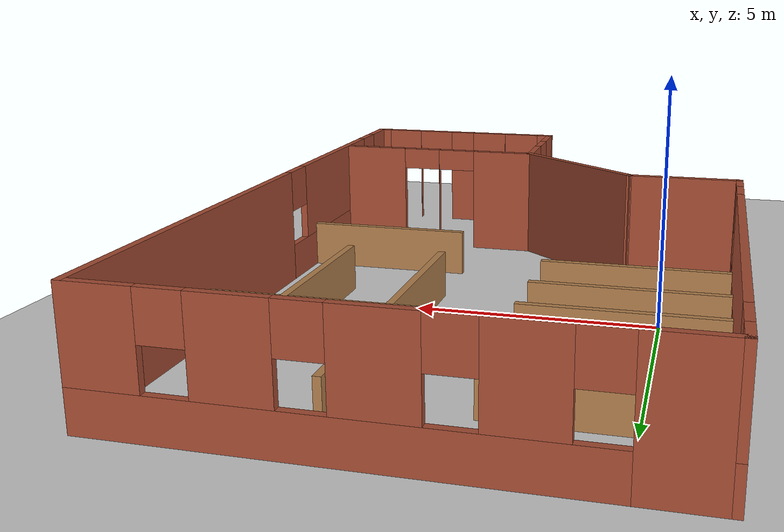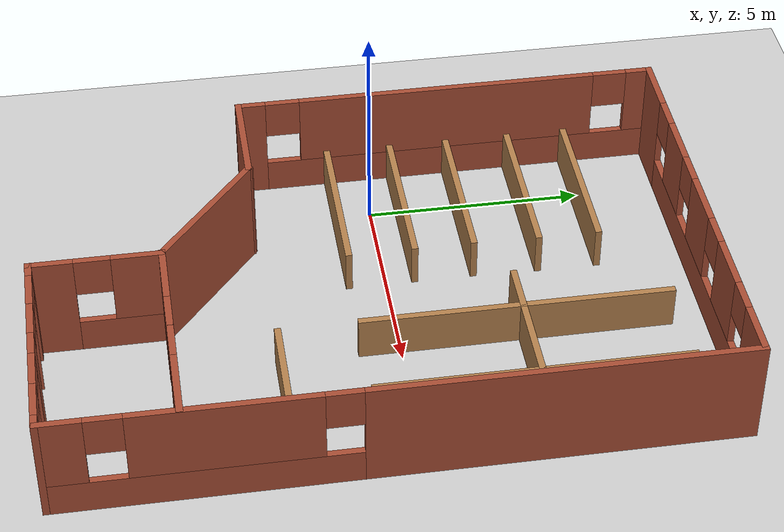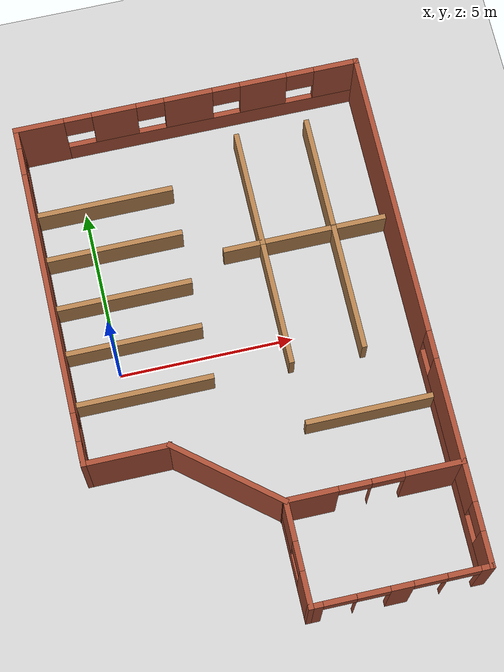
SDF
<sdf version="1.7">
 <world name="default">
  <light name="sun" type="directional">
   <pose>0 0 10 0 -0 0</pose>
   <diffuse>0.8 0.8 0.8 1</diffuse>
   <specular>0.2 0.2 0.2 1</specular>
   <attenuation>
    <range>1000</range>
    <constant>0.9</constant>
    <linear>0.01</linear>
    <quadratic>0.001</quadratic>
   </attenuation>
   <direction>-0.5 0.1 -0.9</direction>
   <spot><inner_angle>0</inner_angle><outer_angle>0</outer_angle><falloff>0</falloff></spot>
  </light>
  <model name="ground_plane">
   <static>1</static>
   <link name="link">
    <collision name="collision">
     <geometry><plane><normal>0 0 1</normal><size>100 100</size></plane></geometry>
     <surface><friction><ode><mu>100</mu><mu2>50</mu2></ode></friction></surface>
    </collision>
    <visual name="visual">
     <cast_shadows>0</cast_shadows>
     <geometry><plane><normal>0 0 1</normal><size>100 100</size></plane></geometry>
     <material>
      <script><uri>file://media/materials/scripts/gazebo.material</uri><name>Gazebo/Grey</name></script>
     </material>
    </visual>
   </link>
  </model>
  <gravity>0 0 -9.8</gravity>
  <magnetic_field>6e-06 2.3e-05 -4.2e-05</magnetic_field>
  <atmosphere type="adiabatic"/>
  <physics type="ode">
   <max_step_size>0.001</max_step_size>
   <real_time_factor>1</real_time_factor>
   <real_time_update_rate>1000</real_time_update_rate>
  </physics>
  <scene><ambient>0.4 0.4 0.4 1</ambient><background>0.7 0.7 0.7 1</background><shadows>1</shadows></scene>
  <audio><device>default</device></audio>
  <spherical_coordinates>
   <surface_model>EARTH_WGS84</surface_model>
   <latitude_deg>0</latitude_deg>
   <longitude_deg>0</longitude_deg>
   <elevation>0</elevation>
   <heading_deg>0</heading_deg>
  </spherical_coordinates>
  <model name="warehouse">
   <pose>3.49047 -0.467856 0 0 -0 0</pose>
   <link name="Wall_0">
    <pose>-4.925 2.5 0 0 -0 1.5708</pose>
    <visual name="Wall_0_Visual_0">
     <pose>-4.64847 0 1.25 0 -0 0</pose>
     <geometry><box><size>0.703062 0.15 2.5</size></box></geometry>
     <material>
      <script><uri>file://media/materials/scripts/gazebo.material</uri><name>Gazebo/Bricks</name></script>
      <ambient>1 1 1 1</ambient>
     </material>
     <meta><layer>0</layer></meta>
    </visual>
    <collision name="Wall_0_Collision_0">
     <geometry><box><size>0.703062 0.15 2.5</size></box></geometry>
     <pose>-4.64847 0 1.25 0 -0 0</pose>
    </collision>
    <visual name="Wall_0_Visual_1">
     <pose>0.351531 0 0.4 0 -0 0</pose>
     <geometry><box><size>9.29694 0.15 0.8</size></box></geometry>
     <material>
      <script><uri>file://media/materials/scripts/gazebo.material</uri><name>Gazebo/Bricks</name></script>
      <ambient>1 1 1 1</ambient>
     </material>
     <meta><layer>0</layer></meta>
    </visual>
    <collision name="Wall_0_Collision_1">
     <geometry><box><size>9.29694 0.15 0.8</size></box></geometry>
     <pose>0.351531 0 0.4 0 -0 0</pose>
    </collision>
    <visual name="Wall_0_Visual_2">
     <pose>0.026616 0 1.65 0 -0 0</pose>
     <geometry><box><size>7.04711 0.15 1.7</size></box></geometry>
     <material>
      <script><uri>file://media/materials/scripts/gazebo.material</uri><name>Gazebo/Bricks</name></script>
      <ambient>1 1 1 1</ambient>
     </material>
     <meta><layer>0</layer></meta>
    </visual>
    <collision name="Wall_0_Collision_2">
     <geometry><box><size>7.04711 0.15 1.7</size></box></geometry>
     <pose>0.026616 0 1.65 0 -0 0</pose>
    </collision>
    <visual name="Wall_0_Visual_3">
     <pose>4.67509 0 1.65 0 -0 0</pose>
     <geometry><box><size>0.649829 0.15 1.7</size></box></geometry>
     <material>
      <script><uri>file://media/materials/scripts/gazebo.material</uri><name>Gazebo/Bricks</name></script>
      <ambient>1 1 1 1</ambient>
     </material>
     <meta><layer>0</layer></meta>
    </visual>
    <collision name="Wall_0_Collision_3">
     <geometry><box><size>0.649829 0.15 1.7</size></box></geometry>
     <pose>4.67509 0 1.65 0 -0 0</pose>
    </collision>
    <visual name="Wall_0_Visual_4">
     <pose>-3.89694 0 2.05 0 -0 0</pose>
     <geometry><box><size>0.8 0.15 0.9</size></box></geometry>
     <material>
      <script><uri>file://media/materials/scripts/gazebo.material</uri><name>Gazebo/Bricks</name></script>
      <ambient>1 1 1 1</ambient>
     </material>
     <meta><layer>0</layer></meta>
    </visual>
    <collision name="Wall_0_Collision_4">
     <geometry><box><size>0.8 0.15 0.9</size></box></geometry>
     <pose>-3.89694 0 2.05 0 -0 0</pose>
    </collision>
    <visual name="Wall_0_Visual_5">
     <pose>3.95017 0 2.05 0 -0 0</pose>
     <geometry><box><size>0.8 0.15 0.9</size></box></geometry>
     <material>
      <script><uri>file://media/materials/scripts/gazebo.material</uri><name>Gazebo/Bricks</name></script>
      <ambient>1 1 1 1</ambient>
     </material>
     <meta><layer>0</layer></meta>
    </visual>
    <collision name="Wall_0_Collision_5">
     <geometry><box><size>0.8 0.15 0.9</size></box></geometry>
     <pose>3.95017 0 2.05 0 -0 0</pose>
    </collision>
   </link>
   <link name="Wall_11">
    <pose>0.075 -6 0 0 -0 1.5708</pose>
    <visual name="Wall_11_Visual_0">
     <pose>-0.9855 0 1.25 0 -0 0</pose>
     <geometry><box><size>1.029 0.15 2.5</size></box></geometry>
     <material>
      <script><uri>file://media/materials/scripts/gazebo.material</uri><name>Gazebo/Bricks</name></script>
      <ambient>1 1 1 1</ambient>
     </material>
     <meta><layer>0</layer></meta>
    </visual>
    <collision name="Wall_11_Collision_0">
     <geometry><box><size>1.029 0.15 2.5</size></box></geometry>
     <pose>-0.9855 0 1.25 0 -0 0</pose>
    </collision>
    <visual name="Wall_11_Visual_1">
     <pose>0.5145 0 0.4 0 -0 0</pose>
     <geometry><box><size>1.971 0.15 0.8</size></box></geometry>
     <material>
      <script><uri>file://media/materials/scripts/gazebo.material</uri><name>Gazebo/Bricks</name></script>
      <ambient>1 1 1 1</ambient>
     </material>
     <meta><layer>0</layer></meta>
    </visual>
    <collision name="Wall_11_Collision_1">
     <geometry><box><size>1.971 0.15 0.8</size></box></geometry>
     <pose>0.5145 0 0.4 0 -0 0</pose>
    </collision>
    <visual name="Wall_11_Visual_2">
     <pose>0.9145 0 1.65 0 -0 0</pose>
     <geometry><box><size>1.171 0.15 1.7</size></box></geometry>
     <material>
      <script><uri>file://media/materials/scripts/gazebo.material</uri><name>Gazebo/Bricks</name></script>
      <ambient>1 1 1 1</ambient>
     </material>
     <meta><layer>0</layer></meta>
    </visual>
    <collision name="Wall_11_Collision_2">
     <geometry><box><size>1.171 0.15 1.7</size></box></geometry>
     <pose>0.9145 0 1.65 0 -0 0</pose>
    </collision>
    <visual name="Wall_11_Visual_3">
     <pose>-0.071 0 2.05 0 -0 0</pose>
     <geometry><box><size>0.8 0.15 0.9</size></box></geometry>
     <material>
      <script><uri>file://media/materials/scripts/gazebo.material</uri><name>Gazebo/Bricks</name></script>
      <ambient>1 1 1 1</ambient>
     </material>
     <meta><layer>0</layer></meta>
    </visual>
    <collision name="Wall_11_Collision_3">
     <geometry><box><size>0.8 0.15 0.9</size></box></geometry>
     <pose>-0.071 0 2.05 0 -0 0</pose>
    </collision>
   </link>
   <link name="Wall_12">
    <collision name="Wall_12_Collision">
     <geometry><box><size>3.56248 0.15 2.5</size></box></geometry>
     <pose>0 0 1.25 0 -0 0</pose>
    </collision>
    <visual name="Wall_12_Visual">
     <pose>0 0 1.25 0 -0 0</pose>
     <geometry><box><size>3.56248 0.15 2.5</size></box></geometry>
     <material>
      <script><uri>file://media/materials/scripts/gazebo.material</uri><name>Gazebo/Bricks</name></script>
      <ambient>1 1 1 1</ambient>
     </material>
     <meta><layer>0</layer></meta>
    </visual>
    <pose>-1.25 -3.5 0 0 -0 2.45999</pose>
   </link>
   <link name="Wall_14">
    <collision name="Wall_14_Collision">
     <geometry><box><size>4 0.15 1</size></box></geometry>
     <pose>0 0 0.5 0 -0 0</pose>
    </collision>
    <visual name="Wall_14_Visual">
     <pose>0 0 0.5 0 -0 0</pose>
     <geometry><box><size>4 0.15 1</size></box></geometry>
     <material>
      <script><uri>file://media/materials/scripts/gazebo.material</uri><name>Gazebo/Wood</name></script>
      <ambient>1 1 1 1</ambient>
     </material>
     <meta><layer>0</layer></meta>
    </visual>
    <pose>-2.908 5.377 0 0 -0 0</pose>
   </link>
   <link name="Wall_16">
    <collision name="Wall_16_Collision">
     <geometry><box><size>4 0.15 1</size></box></geometry>
     <pose>0 0 0.5 0 -0 0</pose>
    </collision>
    <visual name="Wall_16_Visual">
     <pose>0 0 0.5 0 -0 0</pose>
     <geometry><box><size>4 0.15 1</size></box></geometry>
     <material>
      <script><uri>file://media/materials/scripts/gazebo.material</uri><name>Gazebo/Wood</name></script>
      <ambient>1 1 1 1</ambient>
     </material>
     <meta><layer>0</layer></meta>
    </visual>
    <pose>-2.916 3.991 0 0 -0 0</pose>
   </link>
   <link name="Wall_18">
    <collision name="Wall_18_Collision">
     <geometry><box><size>4 0.15 1</size></box></geometry>
     <pose>0 0 0.5 0 -0 0</pose>
    </collision>
    <visual name="Wall_18_Visual">
     <pose>0 0 0.5 0 -0 0</pose>
     <geometry><box><size>4 0.15 1</size></box></geometry>
     <material>
      <script><uri>file://media/materials/scripts/gazebo.material</uri><name>Gazebo/Wood</name></script>
      <ambient>1 1 1 1</ambient>
     </material>
     <meta><layer>0</layer></meta>
    </visual>
    <pose>-2.962 2.494 0 0 -0 0</pose>
   </link>
   <link name="Wall_2">
    <pose>-0 7.425 0 0 -0 0</pose>
    <visual name="Wall_2_Visual_0">
     <pose>-4.2747 0 1.25 0 -0 0</pose>
     <geometry><box><size>1.45059 0.15 2.5</size></box></geometry>
     <material>
      <script><uri>file://media/materials/scripts/gazebo.material</uri><name>Gazebo/Bricks</name></script>
      <ambient>1 1 1 1</ambient>
     </material>
     <meta><layer>0</layer></meta>
    </visual>
    <collision name="Wall_2_Collision_0">
     <geometry><box><size>1.45059 0.15 2.5</size></box></geometry>
     <pose>-4.2747 0 1.25 0 -0 0</pose>
    </collision>
    <visual name="Wall_2_Visual_1">
     <pose>0.725296 0 0.4 0 -0 0</pose>
     <geometry><box><size>8.54941 0.15 0.8</size></box></geometry>
     <material>
      <script><uri>file://media/materials/scripts/gazebo.material</uri><name>Gazebo/Bricks</name></script>
      <ambient>1 1 1 1</ambient>
     </material>
     <meta><layer>0</layer></meta>
    </visual>
    <collision name="Wall_2_Collision_1">
     <geometry><box><size>8.54941 0.15 0.8</size></box></geometry>
     <pose>0.725296 0 0.4 0 -0 0</pose>
    </collision>
    <visual name="Wall_2_Visual_2">
     <pose>-2.10871 0 1.65 0 -0 0</pose>
     <geometry><box><size>1.2814 0.15 1.7</size></box></geometry>
     <material>
      <script><uri>file://media/materials/scripts/gazebo.material</uri><name>Gazebo/Bricks</name></script>
      <ambient>1 1 1 1</ambient>
     </material>
     <meta><layer>0</layer></meta>
    </visual>
    <collision name="Wall_2_Collision_2">
     <geometry><box><size>1.2814 0.15 1.7</size></box></geometry>
     <pose>-2.10871 0 1.65 0 -0 0</pose>
    </collision>
    <visual name="Wall_2_Visual_3">
     <pose>0.0325 0 1.65 0 -0 0</pose>
     <geometry><box><size>1.40102 0.15 1.7</size></box></geometry>
     <material>
      <script><uri>file://media/materials/scripts/gazebo.material</uri><name>Gazebo/Bricks</name></script>
      <ambient>1 1 1 1</ambient>
     </material>
     <meta><layer>0</layer></meta>
    </visual>
    <collision name="Wall_2_Collision_3">
     <geometry><box><size>1.40102 0.15 1.7</size></box></geometry>
     <pose>0.0325 0 1.65 0 -0 0</pose>
    </collision>
    <visual name="Wall_2_Visual_4">
     <pose>2.20959 0 1.65 0 -0 0</pose>
     <geometry><box><size>1.35317 0.15 1.7</size></box></geometry>
     <material>
      <script><uri>file://media/materials/scripts/gazebo.material</uri><name>Gazebo/Bricks</name></script>
      <ambient>1 1 1 1</ambient>
     </material>
     <meta><layer>0</layer></meta>
    </visual>
    <collision name="Wall_2_Collision_4">
     <geometry><box><size>1.35317 0.15 1.7</size></box></geometry>
     <pose>2.20959 0 1.65 0 -0 0</pose>
    </collision>
    <visual name="Wall_2_Visual_5">
     <pose>4.34309 0 1.65 0 -0 0</pose>
     <geometry><box><size>1.31382 0.15 1.7</size></box></geometry>
     <material>
      <script><uri>file://media/materials/scripts/gazebo.material</uri><name>Gazebo/Bricks</name></script>
      <ambient>1 1 1 1</ambient>
     </material>
     <meta><layer>0</layer></meta>
    </visual>
    <collision name="Wall_2_Collision_5">
     <geometry><box><size>1.31382 0.15 1.7</size></box></geometry>
     <pose>4.34309 0 1.65 0 -0 0</pose>
    </collision>
    <visual name="Wall_2_Visual_6">
     <pose>-3.14941 0 2.05 0 -0 0</pose>
     <geometry><box><size>0.8 0.15 0.9</size></box></geometry>
     <material>
      <script><uri>file://media/materials/scripts/gazebo.material</uri><name>Gazebo/Bricks</name></script>
      <ambient>1 1 1 1</ambient>
     </material>
     <meta><layer>0</layer></meta>
    </visual>
    <collision name="Wall_2_Collision_6">
     <geometry><box><size>0.8 0.15 0.9</size></box></geometry>
     <pose>-3.14941 0 2.05 0 -0 0</pose>
    </collision>
    <visual name="Wall_2_Visual_7">
     <pose>-1.06801 0 2.05 0 -0 0</pose>
     <geometry><box><size>0.8 0.15 0.9</size></box></geometry>
     <material>
      <script><uri>file://media/materials/scripts/gazebo.material</uri><name>Gazebo/Bricks</name></script>
      <ambient>1 1 1 1</ambient>
     </material>
     <meta><layer>0</layer></meta>
    </visual>
    <collision name="Wall_2_Collision_7">
     <geometry><box><size>0.8 0.15 0.9</size></box></geometry>
     <pose>-1.06801 0 2.05 0 -0 0</pose>
    </collision>
    <visual name="Wall_2_Visual_8">
     <pose>1.13301 0 2.05 0 -0 0</pose>
     <geometry><box><size>0.8 0.15 0.9</size></box></geometry>
     <material>
      <script><uri>file://media/materials/scripts/gazebo.material</uri><name>Gazebo/Bricks</name></script>
      <ambient>1 1 1 1</ambient>
     </material>
     <meta><layer>0</layer></meta>
    </visual>
    <collision name="Wall_2_Collision_8">
     <geometry><box><size>0.8 0.15 0.9</size></box></geometry>
     <pose>1.13301 0 2.05 0 -0 0</pose>
    </collision>
    <visual name="Wall_2_Visual_9">
     <pose>3.28618 0 2.05 0 -0 0</pose>
     <geometry><box><size>0.8 0.15 0.9</size></box></geometry>
     <material>
      <script><uri>file://media/materials/scripts/gazebo.material</uri><name>Gazebo/Bricks</name></script>
      <ambient>1 1 1 1</ambient>
     </material>
     <meta><layer>0</layer></meta>
    </visual>
    <collision name="Wall_2_Collision_9">
     <geometry><box><size>0.8 0.15 0.9</size></box></geometry>
     <pose>3.28618 0 2.05 0 -0 0</pose>
    </collision>
   </link>
   <link name="Wall_20">
    <collision name="Wall_20_Collision">
     <geometry><box><size>4 0.15 1</size></box></geometry>
     <pose>0 0 0.5 0 -0 0</pose>
    </collision>
    <visual name="Wall_20_Visual">
     <pose>0 0 0.5 0 -0 0</pose>
     <geometry><box><size>4 0.15 1</size></box></geometry>
     <material>
      <script><uri>file://media/materials/scripts/gazebo.material</uri><name>Gazebo/Wood</name></script>
      <ambient>1 1 1 1</ambient>
     </material>
     <meta><layer>0</layer></meta>
    </visual>
    <pose>-2.961 1.133 0 0 -0 0</pose>
   </link>
   <link name="Wall_22">
    <collision name="Wall_22_Collision">
     <geometry><box><size>4 0.15 1</size></box></geometry>
     <pose>0 0 0.5 0 -0 0</pose>
    </collision>
    <visual name="Wall_22_Visual">
     <pose>0 0 0.5 0 -0 0</pose>
     <geometry><box><size>4 0.15 1</size></box></geometry>
     <material>
      <script><uri>file://media/materials/scripts/gazebo.material</uri><name>Gazebo/Wood</name></script>
      <ambient>1 1 1 1</ambient>
     </material>
     <meta><layer>0</layer></meta>
    </visual>
    <pose>-2.954 -0.379 0 0 -0 0</pose>
   </link>
   <link name="Wall_24">
    <collision name="Wall_24_Collision">
     <geometry><box><size>4.75 0.15 1</size></box></geometry>
     <pose>0 0 0.5 0 -0 0</pose>
    </collision>
    <visual name="Wall_24_Visual">
     <pose>0 0 0.5 0 -0 0</pose>
     <geometry><box><size>4.75 0.15 1</size></box></geometry>
     <material>
      <script><uri>file://media/materials/scripts/gazebo.material</uri><name>Gazebo/Wood</name></script>
      <ambient>1 1 1 1</ambient>
     </material>
     <meta><layer>0</layer></meta>
    </visual>
    <pose>2.474 3.186 0 0 -0 0</pose>
   </link>
   <link name="Wall_28">
    <collision name="Wall_28_Collision">
     <geometry><box><size>3.5 0.15 1</size></box></geometry>
     <pose>0 0 0.5 0 -0 0</pose>
    </collision>
    <visual name="Wall_28_Visual">
     <pose>0 0 0.5 0 -0 0</pose>
     <geometry><box><size>3.5 0.15 1</size></box></geometry>
     <material>
      <script><uri>file://media/materials/scripts/gazebo.material</uri><name>Gazebo/Wood</name></script>
      <ambient>1 1 1 1</ambient>
     </material>
     <meta><layer>0</layer></meta>
    </visual>
    <pose>1.244 4.865 0 0 -0 -1.5708</pose>
   </link>
   <link name="Wall_30">
    <collision name="Wall_30_Collision">
     <geometry><box><size>3.75 0.15 1</size></box></geometry>
     <pose>0 0 0.5 0 -0 0</pose>
    </collision>
    <visual name="Wall_30_Visual">
     <pose>0 0 0.5 0 -0 0</pose>
     <geometry><box><size>3.75 0.15 1</size></box></geometry>
     <material>
      <script><uri>file://media/materials/scripts/gazebo.material</uri><name>Gazebo/Wood</name></script>
      <ambient>1 1 1 1</ambient>
     </material>
     <meta><layer>0</layer></meta>
    </visual>
    <pose>3.329 1.384 0 0 -0 -1.5708</pose>
   </link>
   <link name="Wall_32">
    <collision name="Wall_32_Collision">
     <geometry><box><size>3.75 0.15 1</size></box></geometry>
     <pose>0 0 0.5 0 -0 0</pose>
    </collision>
    <visual name="Wall_32_Visual">
     <pose>0 0 0.5 0 -0 0</pose>
     <geometry><box><size>3.75 0.15 1</size></box></geometry>
     <material>
      <script><uri>file://media/materials/scripts/gazebo.material</uri><name>Gazebo/Wood</name></script>
      <ambient>1 1 1 1</ambient>
     </material>
     <meta><layer>0</layer></meta>
    </visual>
    <pose>1.244 1.39 0 0 -0 -1.5708</pose>
   </link>
   <link name="Wall_34">
    <collision name="Wall_34_Collision">
     <geometry><box><size>3.5 0.15 1</size></box></geometry>
     <pose>0 0 0.5 0 -0 0</pose>
    </collision>
    <visual name="Wall_34_Visual">
     <pose>0 0 0.5 0 -0 0</pose>
     <geometry><box><size>3.5 0.15 1</size></box></geometry>
     <material>
      <script><uri>file://media/materials/scripts/gazebo.material</uri><name>Gazebo/Wood</name></script>
      <ambient>1 1 1 1</ambient>
     </material>
     <meta><layer>0</layer></meta>
    </visual>
    <pose>3.329 4.859 0 0 -0 1.5708</pose>
   </link>
   <link name="Wall_36">
    <pose>2.48377 -4.56311 0 0 -0 3.14159</pose>
    <visual name="Wall_36_Visual_0">
     <pose>-1.66401 0 1.25 0 -0 0</pose>
     <geometry><box><size>1.67197 0.15 2.5</size></box></geometry>
     <material>
      <script><uri>file://media/materials/scripts/gazebo.material</uri><name>Gazebo/Bricks</name></script>
      <ambient>1 1 1 1</ambient>
     </material>
     <meta><layer>0</layer></meta>
    </visual>
    <collision name="Wall_36_Collision_0">
     <geometry><box><size>1.67197 0.15 2.5</size></box></geometry>
     <pose>-1.66401 0 1.25 0 -0 0</pose>
    </collision>
    <visual name="Wall_36_Visual_1">
     <pose>0.073541 0 1.25 0 -0 0</pose>
     <geometry><box><size>0.003138 0.15 2.5</size></box></geometry>
     <material>
      <script><uri>file://media/materials/scripts/gazebo.material</uri><name>Gazebo/Bricks</name></script>
      <ambient>1 1 1 1</ambient>
     </material>
     <meta><layer>0</layer></meta>
    </visual>
    <collision name="Wall_36_Collision_1">
     <geometry><box><size>0.003138 0.15 2.5</size></box></geometry>
     <pose>0.073541 0 1.25 0 -0 0</pose>
    </collision>
    <visual name="Wall_36_Visual_2">
     <pose>1.73755 0 1.25 0 -0 0</pose>
     <geometry><box><size>1.52489 0.15 2.5</size></box></geometry>
     <material>
      <script><uri>file://media/materials/scripts/gazebo.material</uri><name>Gazebo/Bricks</name></script>
      <ambient>1 1 1 1</ambient>
     </material>
     <meta><layer>0</layer></meta>
    </visual>
    <collision name="Wall_36_Collision_2">
     <geometry><box><size>1.52489 0.15 2.5</size></box></geometry>
     <pose>1.73755 0 1.25 0 -0 0</pose>
    </collision>
    <visual name="Wall_36_Visual_3">
     <pose>-0.378028 0 2.25 0 -0 0</pose>
     <geometry><box><size>0.9 0.15 0.5</size></box></geometry>
     <material>
      <script><uri>file://media/materials/scripts/gazebo.material</uri><name>Gazebo/Bricks</name></script>
      <ambient>1 1 1 1</ambient>
     </material>
     <meta><layer>0</layer></meta>
    </visual>
    <collision name="Wall_36_Collision_3">
     <geometry><box><size>0.9 0.15 0.5</size></box></geometry>
     <pose>-0.378028 0 2.25 0 -0 0</pose>
    </collision>
    <visual name="Wall_36_Visual_4">
     <pose>0.52511 0 2.25 0 -0 0</pose>
     <geometry><box><size>0.9 0.15 0.5</size></box></geometry>
     <material>
      <script><uri>file://media/materials/scripts/gazebo.material</uri><name>Gazebo/Bricks</name></script>
      <ambient>1 1 1 1</ambient>
     </material>
     <meta><layer>0</layer></meta>
    </visual>
    <collision name="Wall_36_Collision_4">
     <geometry><box><size>0.9 0.15 0.5</size></box></geometry>
     <pose>0.52511 0 2.25 0 -0 0</pose>
    </collision>
   </link>
   <link name="Wall_39">
    <collision name="Wall_39_Collision">
     <geometry><box><size>3.75 0.15 1</size></box></geometry>
     <pose>0 0 0.5 0 -0 0</pose>
    </collision>
    <visual name="Wall_39_Visual">
     <pose>0 0 0.5 0 -0 0</pose>
     <geometry><box><size>3.75 0.15 1</size></box></geometry>
     <material>
      <script><uri>file://media/materials/scripts/gazebo.material</uri><name>Gazebo/Wood</name></script>
      <ambient>1 1 1 1</ambient>
     </material>
     <meta><layer>0</layer></meta>
    </visual>
    <pose>3.089 -2.246 0 0 -0 3.14159</pose>
   </link>
   <link name="Wall_4">
    <pose>4.925 -0 0 0 -0 -1.5708</pose>
    <visual name="Wall_4_Visual_0">
     <pose>-3.3233 0 1.25 0 -0 0</pose>
     <geometry><box><size>8.35339 0.15 2.5</size></box></geometry>
     <material>
      <script><uri>file://media/materials/scripts/gazebo.material</uri><name>Gazebo/Bricks</name></script>
      <ambient>1 1 1 1</ambient>
     </material>
     <meta><layer>0</layer></meta>
    </visual>
    <collision name="Wall_4_Collision_0">
     <geometry><box><size>8.35339 0.15 2.5</size></box></geometry>
     <pose>-3.3233 0 1.25 0 -0 0</pose>
    </collision>
    <visual name="Wall_4_Visual_1">
     <pose>4.1767 0 0.4 0 -0 0</pose>
     <geometry><box><size>6.64661 0.15 0.8</size></box></geometry>
     <material>
      <script><uri>file://media/materials/scripts/gazebo.material</uri><name>Gazebo/Bricks</name></script>
      <ambient>1 1 1 1</ambient>
     </material>
     <meta><layer>0</layer></meta>
    </visual>
    <collision name="Wall_4_Collision_1">
     <geometry><box><size>6.64661 0.15 0.8</size></box></geometry>
     <pose>4.1767 0 0.4 0 -0 0</pose>
    </collision>
    <visual name="Wall_4_Visual_2">
     <pose>3.66982 0 1.65 0 -0 0</pose>
     <geometry><box><size>4.03286 0.15 1.7</size></box></geometry>
     <material>
      <script><uri>file://media/materials/scripts/gazebo.material</uri><name>Gazebo/Bricks</name></script>
      <ambient>1 1 1 1</ambient>
     </material>
     <meta><layer>0</layer></meta>
    </visual>
    <collision name="Wall_4_Collision_2">
     <geometry><box><size>4.03286 0.15 1.7</size></box></geometry>
     <pose>3.66982 0 1.65 0 -0 0</pose>
    </collision>
    <visual name="Wall_4_Visual_3">
     <pose>6.99313 0 1.65 0 -0 0</pose>
     <geometry><box><size>1.01375 0.15 1.7</size></box></geometry>
     <material>
      <script><uri>file://media/materials/scripts/gazebo.material</uri><name>Gazebo/Bricks</name></script>
      <ambient>1 1 1 1</ambient>
     </material>
     <meta><layer>0</layer></meta>
    </visual>
    <collision name="Wall_4_Collision_3">
     <geometry><box><size>1.01375 0.15 1.7</size></box></geometry>
     <pose>6.99313 0 1.65 0 -0 0</pose>
    </collision>
    <visual name="Wall_4_Visual_4">
     <pose>1.25339 0 2.05 0 -0 0</pose>
     <geometry><box><size>0.8 0.15 0.9</size></box></geometry>
     <material>
      <script><uri>file://media/materials/scripts/gazebo.material</uri><name>Gazebo/Bricks</name></script>
      <ambient>1 1 1 1</ambient>
     </material>
     <meta><layer>0</layer></meta>
    </visual>
    <collision name="Wall_4_Collision_4">
     <geometry><box><size>0.8 0.15 0.9</size></box></geometry>
     <pose>1.25339 0 2.05 0 -0 0</pose>
    </collision>
    <visual name="Wall_4_Visual_5">
     <pose>6.08625 0 2.05 0 -0 0</pose>
     <geometry><box><size>0.8 0.15 0.9</size></box></geometry>
     <material>
      <script><uri>file://media/materials/scripts/gazebo.material</uri><name>Gazebo/Bricks</name></script>
      <ambient>1 1 1 1</ambient>
     </material>
     <meta><layer>0</layer></meta>
    </visual>
    <collision name="Wall_4_Collision_5">
     <geometry><box><size>0.8 0.15 0.9</size></box></geometry>
     <pose>6.08625 0 2.05 0 -0 0</pose>
    </collision>
   </link>
   <link name="Wall_6">
    <pose>2.5 -7.425 0 0 -0 3.14159</pose>
    <visual name="Wall_6_Visual_0">
     <pose>-2.31601 0 1.25 0 -0 0</pose>
     <geometry><box><size>0.367981 0.15 2.5</size></box></geometry>
     <material>
      <script><uri>file://media/materials/scripts/gazebo.material</uri><name>Gazebo/Bricks</name></script>
      <ambient>1 1 1 1</ambient>
     </material>
     <meta><layer>0</layer></meta>
    </visual>
    <collision name="Wall_6_Collision_0">
     <geometry><box><size>0.367981 0.15 2.5</size></box></geometry>
     <pose>-2.31601 0 1.25 0 -0 0</pose>
    </collision>
    <visual name="Wall_6_Visual_1">
     <pose>-1.2309 0 1.25 0 -0 0</pose>
     <geometry><box><size>0.002249 0.15 2.5</size></box></geometry>
     <material>
      <script><uri>file://media/materials/scripts/gazebo.material</uri><name>Gazebo/Bricks</name></script>
      <ambient>1 1 1 1</ambient>
     </material>
     <meta><layer>0</layer></meta>
    </visual>
    <collision name="Wall_6_Collision_1">
     <geometry><box><size>0.002249 0.15 2.5</size></box></geometry>
     <pose>-1.2309 0 1.25 0 -0 0</pose>
    </collision>
    <visual name="Wall_6_Visual_2">
     <pose>-0.01737 0 1.25 0 -0 0</pose>
     <geometry><box><size>0.6248 0.15 2.5</size></box></geometry>
     <material>
      <script><uri>file://media/materials/scripts/gazebo.material</uri><name>Gazebo/Bricks</name></script>
      <ambient>1 1 1 1</ambient>
     </material>
     <meta><layer>0</layer></meta>
    </visual>
    <collision name="Wall_6_Collision_2">
     <geometry><box><size>0.6248 0.15 2.5</size></box></geometry>
     <pose>-0.01737 0 1.25 0 -0 0</pose>
    </collision>
    <visual name="Wall_6_Visual_3">
     <pose>1.19616 0 1.25 0 -0 0</pose>
     <geometry><box><size>0.002249 0.15 2.5</size></box></geometry>
     <material>
      <script><uri>file://media/materials/scripts/gazebo.material</uri><name>Gazebo/Bricks</name></script>
      <ambient>1 1 1 1</ambient>
     </material>
     <meta><layer>0</layer></meta>
    </visual>
    <collision name="Wall_6_Collision_3">
     <geometry><box><size>0.002249 0.15 2.5</size></box></geometry>
     <pose>1.19616 0 1.25 0 -0 0</pose>
    </collision>
    <visual name="Wall_6_Visual_4">
     <pose>2.29864 0 1.25 0 -0 0</pose>
     <geometry><box><size>0.402721 0.15 2.5</size></box></geometry>
     <material>
      <script><uri>file://media/materials/scripts/gazebo.material</uri><name>Gazebo/Bricks</name></script>
      <ambient>1 1 1 1</ambient>
     </material>
     <meta><layer>0</layer></meta>
    </visual>
    <collision name="Wall_6_Collision_4">
     <geometry><box><size>0.402721 0.15 2.5</size></box></geometry>
     <pose>2.29864 0 1.25 0 -0 0</pose>
    </collision>
    <visual name="Wall_6_Visual_5">
     <pose>-1.68202 0 2.25 0 -0 0</pose>
     <geometry><box><size>0.9 0.15 0.5</size></box></geometry>
     <material>
      <script><uri>file://media/materials/scripts/gazebo.material</uri><name>Gazebo/Bricks</name></script>
      <ambient>1 1 1 1</ambient>
     </material>
     <meta><layer>0</layer></meta>
    </visual>
    <collision name="Wall_6_Collision_5">
     <geometry><box><size>0.9 0.15 0.5</size></box></geometry>
     <pose>-1.68202 0 2.25 0 -0 0</pose>
    </collision>
    <visual name="Wall_6_Visual_6">
     <pose>-0.77977 0 2.25 0 -0 0</pose>
     <geometry><box><size>0.9 0.15 0.5</size></box></geometry>
     <material>
      <script><uri>file://media/materials/scripts/gazebo.material</uri><name>Gazebo/Bricks</name></script>
      <ambient>1 1 1 1</ambient>
     </material>
     <meta><layer>0</layer></meta>
    </visual>
    <collision name="Wall_6_Collision_6">
     <geometry><box><size>0.9 0.15 0.5</size></box></geometry>
     <pose>-0.77977 0 2.25 0 -0 0</pose>
    </collision>
    <visual name="Wall_6_Visual_7">
     <pose>0.74503 0 2.25 0 -0 0</pose>
     <geometry><box><size>0.9 0.15 0.5</size></box></geometry>
     <material>
      <script><uri>file://media/materials/scripts/gazebo.material</uri><name>Gazebo/Bricks</name></script>
      <ambient>1 1 1 1</ambient>
     </material>
     <meta><layer>0</layer></meta>
    </visual>
    <collision name="Wall_6_Collision_7">
     <geometry><box><size>0.9 0.15 0.5</size></box></geometry>
     <pose>0.74503 0 2.25 0 -0 0</pose>
    </collision>
    <visual name="Wall_6_Visual_8">
     <pose>1.64728 0 2.25 0 -0 0</pose>
     <geometry><box><size>0.9 0.15 0.5</size></box></geometry>
     <material>
      <script><uri>file://media/materials/scripts/gazebo.material</uri><name>Gazebo/Bricks</name></script>
      <ambient>1 1 1 1</ambient>
     </material>
     <meta><layer>0</layer></meta>
    </visual>
    <collision name="Wall_6_Collision_8">
     <geometry><box><size>0.9 0.15 0.5</size></box></geometry>
     <pose>1.64728 0 2.25 0 -0 0</pose>
    </collision>
   </link>
   <link name="Wall_8">
    <collision name="Wall_8_Collision">
     <geometry><box><size>2.5 0.15 2.5</size></box></geometry>
     <pose>0 0 1.25 0 -0 0</pose>
    </collision>
    <visual name="Wall_8_Visual">
     <pose>0 0 1.25 0 -0 0</pose>
     <geometry><box><size>2.5 0.15 2.5</size></box></geometry>
     <material>
      <script><uri>file://media/materials/scripts/gazebo.material</uri><name>Gazebo/Bricks</name></script>
      <ambient>1 1 1 1</ambient>
     </material>
     <meta><layer>0</layer></meta>
    </visual>
    <pose>-3.75 -2.425 0 0 -0 0</pose>
   </link>
   <static>1</static>
  </model>
 </world>
</sdf>
